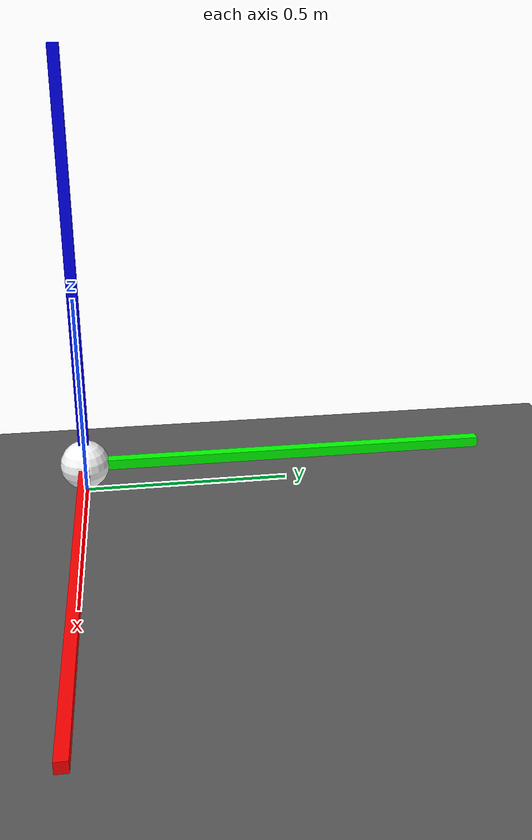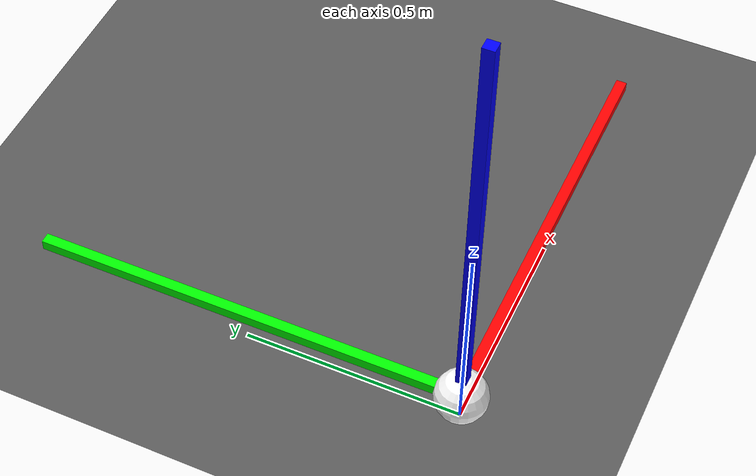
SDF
<?xml version="1.0"?>
<sdf version="1.10">
  <world name="coordinate_debug">
    <physics name="1ms" type="ignored">
      <max_step_size>0.001</max_step_size>
      <real_time_factor>1.0</real_time_factor>
    </physics>
    <plugin filename="gz-sim-physics-system"
      name="gz::sim::systems::Physics"/>
    <plugin filename="gz-sim-user-commands-system"
      name="gz::sim::systems::UserCommands"/>
    <plugin filename="gz-sim-scene-broadcaster-system"
      name="gz::sim::systems::SceneBroadcaster"/>
    <light type="directional" name="sun">
      <pose>0 0 10 0 0 0</pose>
      <direction>-0.5 0.1 -0.9</direction>
    </light>
    <model name="ground">
      <static>true</static>
      <link name="ground_link">
        <collision name="ground_collision">
          <geometry><plane><normal>0 0 1</normal><size>20 20</size></plane></geometry>
        </collision>
        <visual name="ground_visual">
          <geometry><plane><normal>0 0 1</normal><size>20 20</size></plane></geometry>
          <material>
            <ambient>0.35 0.35 0.35 1</ambient>
            <diffuse>0.35 0.35 0.35 1</diffuse>
          </material>
        </visual>
      </link>
    </model>
    <include>
      <uri>model://icarus_debug_axes</uri>
      <pose>0 0 0.07 0 0 0</pose>
    </include>
  </world>
</sdf>

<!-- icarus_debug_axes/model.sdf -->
<sdf version="1.10">
  <model name="icarus_debug_axes">
    <static>true</static>
    <link name="axes_link">
      <visual name="origin">
        <geometry>
          <sphere><radius>0.06</radius></sphere>
        </geometry>
        <material>
          <ambient>1 1 1 1</ambient>
          <diffuse>1 1 1 1</diffuse>
        </material>
      </visual>
      <visual name="x_east_red">
        <pose>0.5 0 0 0 0 0</pose>
        <geometry>
          <box><size>1 0.025 0.025</size></box>
        </geometry>
        <material>
          <ambient>1 0 0 1</ambient>
          <diffuse>1 0 0 1</diffuse>
        </material>
      </visual>
      <visual name="y_north_green">
        <pose>0 0.5 0 0 0 0</pose>
        <geometry>
          <box><size>0.025 1 0.025</size></box>
        </geometry>
        <material>
          <ambient>0 1 0 1</ambient>
          <diffuse>0 1 0 1</diffuse>
        </material>
      </visual>
      <visual name="z_up_blue">
        <pose>0 0 0.5 0 0 0</pose>
        <geometry>
          <box><size>0.025 0.025 1</size></box>
        </geometry>
        <material>
          <ambient>0 0 1 1</ambient>
          <diffuse>0 0 1 1</diffuse>
        </material>
      </visual>
    </link>
  </model>
</sdf>
